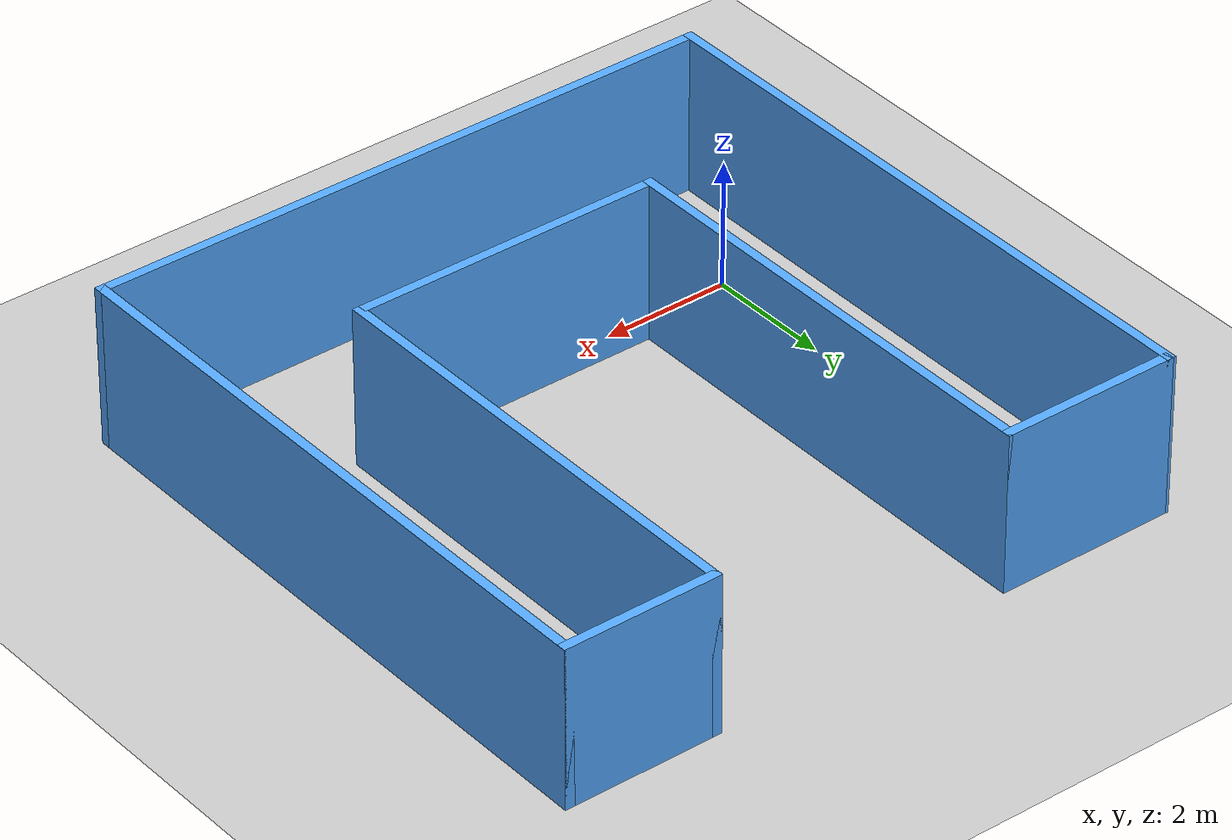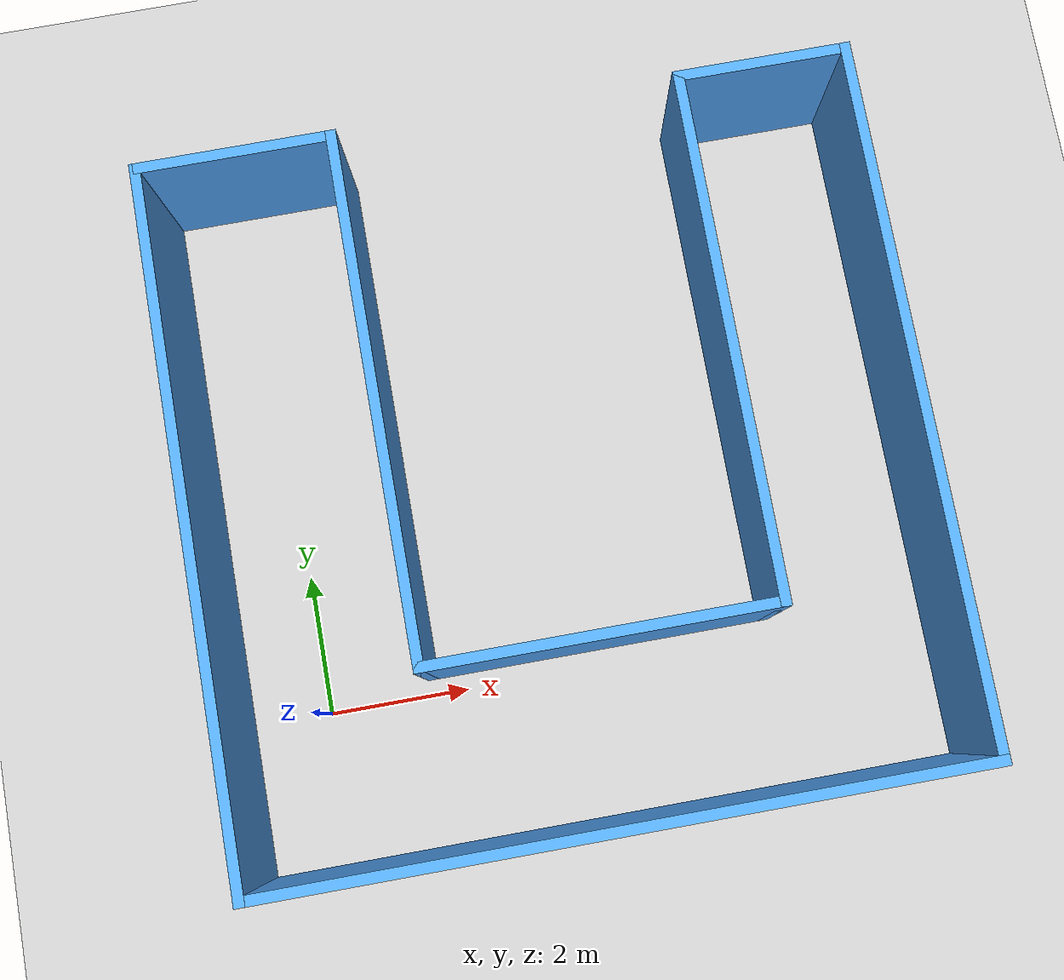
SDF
<sdf version="1.6">
 <world name="default">
  <light name="sun" type="directional">
   <pose>0 0 10 0 -0 0</pose>
   <diffuse>0.8 0.8 0.8 1</diffuse>
   <specular>0.2 0.2 0.2 1</specular>
   <attenuation>
    <range>1000</range>
    <constant>0.9</constant>
    <linear>0.01</linear>
    <quadratic>0.001</quadratic>
   </attenuation>
   <direction>-0.5 0.1 -0.9</direction>
  </light>
  <model name="ground_plane">
   <static>1</static>
   <link name="link">
    <collision name="collision">
     <geometry><plane><normal>0 0 1</normal><size>100 100</size></plane></geometry>
     <surface><friction><ode><mu>100</mu><mu2>50</mu2></ode></friction></surface>
    </collision>
    <visual name="visual">
     <cast_shadows>0</cast_shadows>
     <geometry><plane><normal>0 0 1</normal><size>100 100</size></plane></geometry>
     <material>
      <script><uri>file://media/materials/scripts/gazebo.material</uri><name>Gazebo/Grey</name></script>
     </material>
    </visual>
   </link>
  </model>
  <gravity>0 0 -9.8</gravity>
  <magnetic_field>6e-06 2.3e-05 -4.2e-05</magnetic_field>
  <atmosphere type="adiabatic"/>
  <physics name="default_physics" default="0" type="ode">
   <max_step_size>0.001</max_step_size>
   <real_time_factor>1</real_time_factor>
   <real_time_update_rate>1000</real_time_update_rate>
  </physics>
  <scene><ambient>0.4 0.4 0.4 1</ambient><background>0.7 0.7 0.7 1</background><shadows>1</shadows></scene>
  <spherical_coordinates>
   <surface_model>EARTH_WGS84</surface_model>
   <latitude_deg>0</latitude_deg>
   <longitude_deg>0</longitude_deg>
   <elevation>0</elevation>
   <heading_deg>0</heading_deg>
  </spherical_coordinates>
  <model name="mybuilding">
   <pose>3.76987 2.72919 0 0 -0 0</pose>
   <link name="Wall_10">
    <collision name="Wall_10_Collision">
     <geometry><box><size>2.81388 0.15 2.5</size></box></geometry>
     <pose>0 0 1.25 0 -0 0</pose>
    </collision>
    <visual name="Wall_10_Visual">
     <pose>0 0 1.25 0 -0 0</pose>
     <geometry><box><size>2.81388 0.15 2.5</size></box></geometry>
     <material>
      <script><uri>file://media/materials/scripts/gazebo.material</uri><name>Gazebo/Grey</name></script>
      <ambient>0.333333 0.666667 1 1</ambient>
     </material>
     <meta><layer>0</layer></meta>
    </visual>
    <pose>-3.57687 4.925 0 0 -0 0</pose>
   </link>
   <link name="Wall_11">
    <collision name="Wall_11_Collision">
     <geometry><box><size>7.5 0.15 2.5</size></box></geometry>
     <pose>0 0 1.25 0 -0 0</pose>
    </collision>
    <visual name="Wall_11_Visual">
     <pose>0 0 1.25 0 -0 0</pose>
     <geometry><box><size>7.5 0.15 2.5</size></box></geometry>
     <material>
      <script><uri>file://media/materials/scripts/gazebo.material</uri><name>Gazebo/Grey</name></script>
      <ambient>0.333333 0.666667 1 1</ambient>
     </material>
     <meta><layer>0</layer></meta>
    </visual>
    <pose>-2.24493 1.25 0 0 0 -1.5708</pose>
   </link>
   <link name="Wall_12">
    <collision name="Wall_12_Collision">
     <geometry><box><size>5 0.15 2.5</size></box></geometry>
     <pose>0 0 1.25 0 -0 0</pose>
    </collision>
    <visual name="Wall_12_Visual">
     <pose>0 0 1.25 0 -0 0</pose>
     <geometry><box><size>5 0.15 2.5</size></box></geometry>
     <material>
      <script><uri>file://media/materials/scripts/gazebo.material</uri><name>Gazebo/Grey</name></script>
      <ambient>0.333333 0.666667 1 1</ambient>
     </material>
     <meta><layer>0</layer></meta>
    </visual>
    <pose>0.18007 -2.425 0 0 -0 0</pose>
   </link>
   <link name="Wall_13">
    <collision name="Wall_13_Collision">
     <geometry><box><size>7.5 0.15 2.5</size></box></geometry>
     <pose>0 0 1.25 0 -0 0</pose>
    </collision>
    <visual name="Wall_13_Visual">
     <pose>0 0 1.25 0 -0 0</pose>
     <geometry><box><size>7.5 0.15 2.5</size></box></geometry>
     <material>
      <script><uri>file://media/materials/scripts/gazebo.material</uri><name>Gazebo/Grey</name></script>
      <ambient>0.333333 0.666667 1 1</ambient>
     </material>
     <meta><layer>0</layer></meta>
    </visual>
    <pose>2.60507 1.25 0 0 -0 1.5708</pose>
   </link>
   <link name="Wall_14">
    <collision name="Wall_14_Collision">
     <geometry><box><size>2.5 0.15 2.5</size></box></geometry>
     <pose>0 0 1.25 0 -0 0</pose>
    </collision>
    <visual name="Wall_14_Visual">
     <pose>0 0 1.25 0 -0 0</pose>
     <geometry><box><size>2.5 0.15 2.5</size></box></geometry>
     <material>
      <script><uri>file://media/materials/scripts/gazebo.material</uri><name>Gazebo/Grey</name></script>
      <ambient>0.333333 0.666667 1 1</ambient>
     </material>
     <meta><layer>0</layer></meta>
    </visual>
    <pose>3.78007 4.925 0 0 -0 0</pose>
   </link>
   <link name="Wall_15">
    <collision name="Wall_15_Collision">
     <geometry><box><size>10 0.15 2.5</size></box></geometry>
     <pose>0 0 1.25 0 -0 0</pose>
    </collision>
    <visual name="Wall_15_Visual">
     <pose>0 0 1.25 0 -0 0</pose>
     <geometry><box><size>10 0.15 2.5</size></box></geometry>
     <material>
      <script><uri>file://media/materials/scripts/gazebo.material</uri><name>Gazebo/Grey</name></script>
      <ambient>0.333333 0.666667 1 1</ambient>
     </material>
     <meta><layer>0</layer></meta>
    </visual>
    <pose>4.95507 0 0 0 0 -1.5708</pose>
   </link>
   <link name="Wall_16">
    <collision name="Wall_16_Collision">
     <geometry><box><size>10.0139 0.15 2.5</size></box></geometry>
     <pose>0 0 1.25 0 -0 0</pose>
    </collision>
    <visual name="Wall_16_Visual">
     <pose>0 0 1.25 0 -0 0</pose>
     <geometry><box><size>10.0139 0.15 2.5</size></box></geometry>
     <material>
      <script><uri>file://media/materials/scripts/gazebo.material</uri><name>Gazebo/Grey</name></script>
      <ambient>0.333333 0.666667 1 1</ambient>
     </material>
     <meta><layer>0</layer></meta>
    </visual>
    <pose>0.023131 -4.925 0 0 -0 3.14159</pose>
   </link>
   <link name="Wall_17">
    <collision name="Wall_17_Collision">
     <geometry><box><size>10 0.15 2.5</size></box></geometry>
     <pose>0 0 1.25 0 -0 0</pose>
    </collision>
    <visual name="Wall_17_Visual">
     <pose>0 0 1.25 0 -0 0</pose>
     <geometry><box><size>10 0.15 2.5</size></box></geometry>
     <material>
      <script><uri>file://media/materials/scripts/gazebo.material</uri><name>Gazebo/Grey</name></script>
      <ambient>0.333333 0.666667 1 1</ambient>
     </material>
     <meta><layer>0</layer></meta>
    </visual>
    <pose>-4.95507 0 0 0 -0 1.5708</pose>
   </link>
   <static>1</static>
  </model>
 </world>
</sdf>
